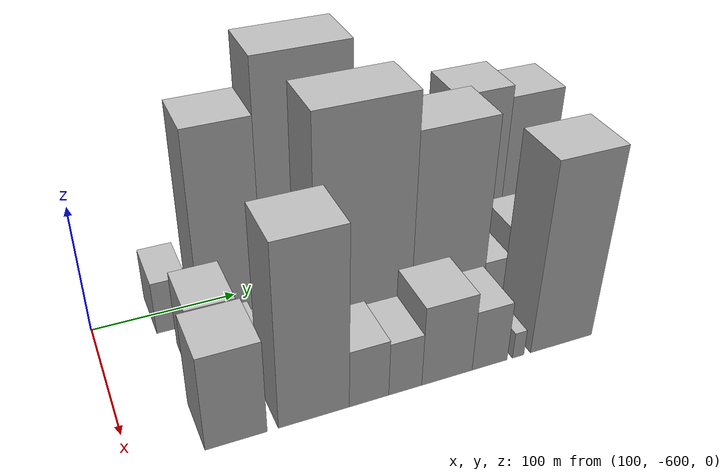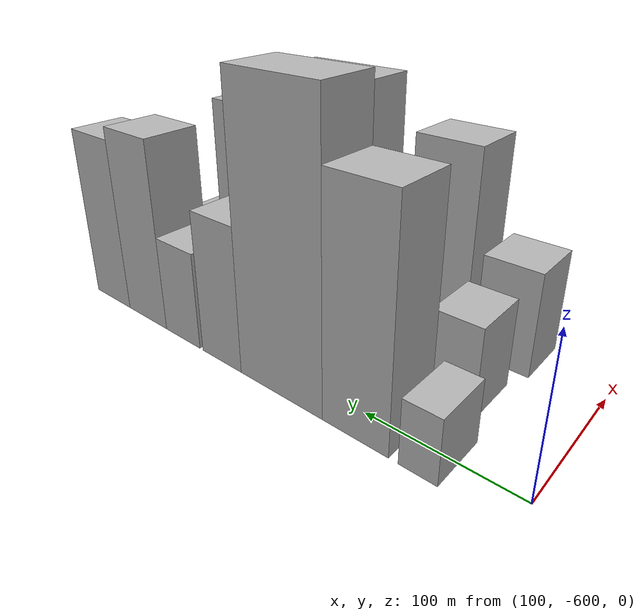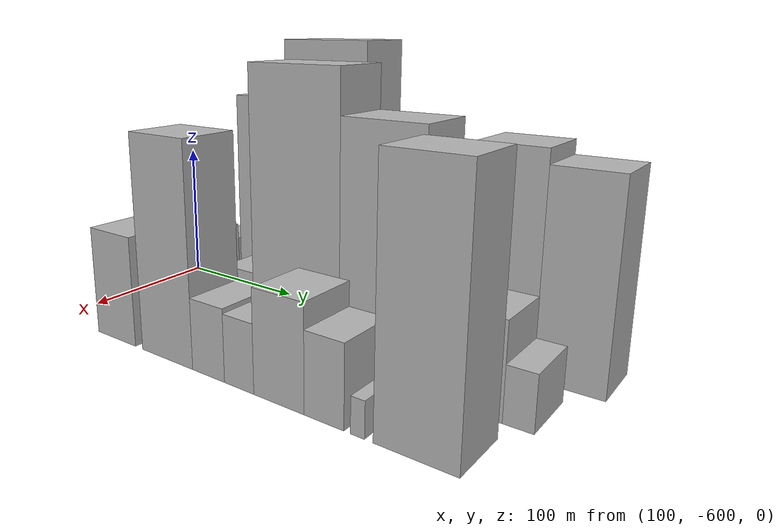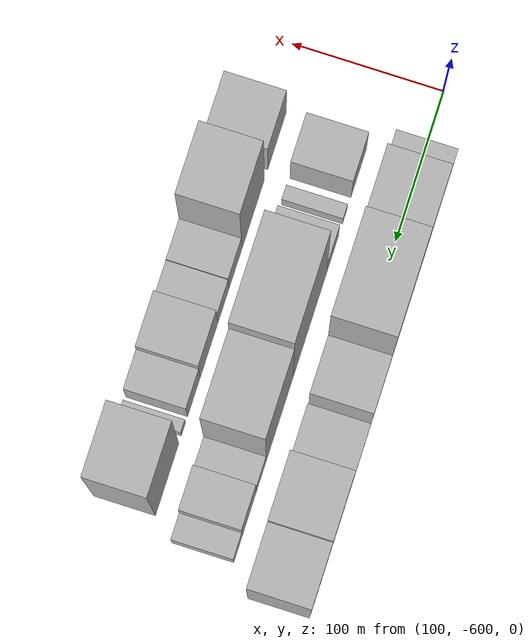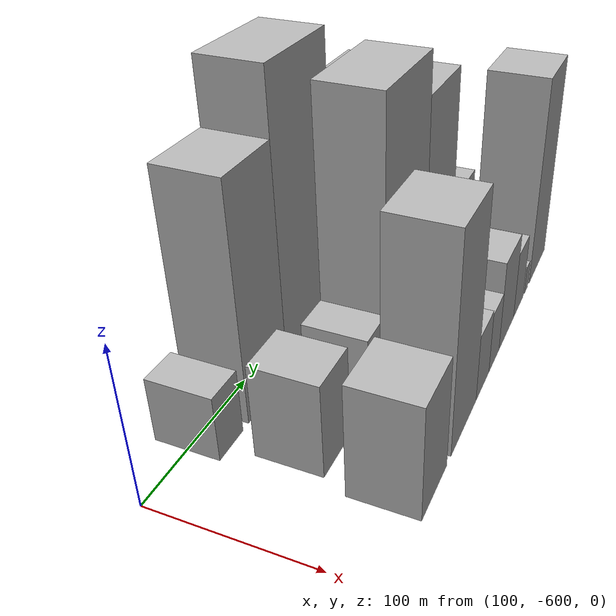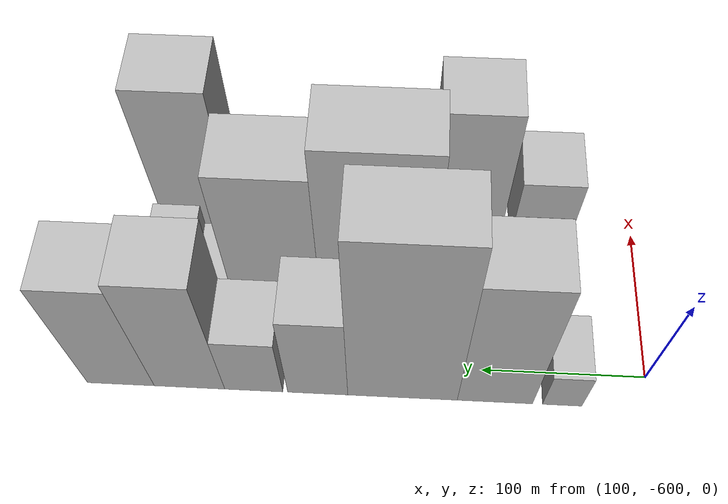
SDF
<sdf version="1.6">
 <world name="default">
  <model name="building_1">
   <static>1</static>
   <pose>100.0000 -548.1899 0 0.000000 0.000000 0.000000</pose>
   <link name="link">
    <pose>0 0 21.00 0 0 0</pose>
    <collision name="collision"><geometry><box><size>40.0000 23.6201 42.0000</size></box></geometry></collision>
    <visual name="visual">
     <cast_shadows>0</cast_shadows>
     <geometry><box><size>40.0000 23.6201 42.0000</size></box></geometry>
     <material>
      <script>
       <uri>model://HANNAS_wall/materials/scripts</uri>
       <uri>model://HANNAS_wall/materials/textures</uri>
       <name>vrc/HANNAS_wall</name>
      </script>
     </material>
    </visual>
   </link>
  </model>
  <model name="building_2">
   <static>1</static>
   <pose>100.0000 -507.7143 0 0.000000 0.000000 0.000000</pose>
   <link name="link">
    <pose>0 0 75.00 0 0 0</pose>
    <collision name="collision"><geometry><box><size>40.0000 45.3312 150.0000</size></box></geometry></collision>
    <visual name="visual">
     <cast_shadows>0</cast_shadows>
     <geometry><box><size>40.0000 45.3312 150.0000</size></box></geometry>
     <material>
      <script>
       <uri>model://HANNAS_wall/materials/scripts</uri>
       <uri>model://HANNAS_wall/materials/textures</uri>
       <name>vrc/HANNAS_wall</name>
      </script>
     </material>
    </visual>
   </link>
  </model>
  <model name="building_3">
   <static>1</static>
   <pose>100.0000 -451.9256 0 0.000000 0.000000 0.000000</pose>
   <link name="link">
    <pose>0 0 94.50 0 0 0</pose>
    <collision name="collision"><geometry><box><size>40.0000 66.2461 189.0000</size></box></geometry></collision>
    <visual name="visual">
     <cast_shadows>0</cast_shadows>
     <geometry><box><size>40.0000 66.2461 189.0000</size></box></geometry>
     <material>
      <script>
       <uri>model://HANNAS_wall/materials/scripts</uri>
       <uri>model://HANNAS_wall/materials/textures</uri>
       <name>vrc/HANNAS_wall</name>
      </script>
     </material>
    </visual>
   </link>
  </model>
  <model name="building_4">
   <static>1</static>
   <pose>100.0000 -400.5581 0 0.000000 0.000000 0.000000</pose>
   <link name="link">
    <pose>0 0 49.50 0 0 0</pose>
    <collision name="collision"><geometry><box><size>40.0000 36.4890 99.0000</size></box></geometry></collision>
    <visual name="visual">
     <cast_shadows>0</cast_shadows>
     <geometry><box><size>40.0000 36.4890 99.0000</size></box></geometry>
     <material>
      <script>
       <uri>model://HANNAS_wall/materials/scripts</uri>
       <uri>model://HANNAS_wall/materials/textures</uri>
       <name>vrc/HANNAS_wall</name>
      </script>
     </material>
    </visual>
   </link>
  </model>
  <model name="building_5">
   <static>1</static>
   <pose>100.0000 -361.6090 0 0.000000 0.000000 0.000000</pose>
   <link name="link">
    <pose>0 0 34.50 0 0 0</pose>
    <collision name="collision"><geometry><box><size>40.0000 35.4092 69.0000</size></box></geometry></collision>
    <visual name="visual">
     <cast_shadows>0</cast_shadows>
     <geometry><box><size>40.0000 35.4092 69.0000</size></box></geometry>
     <material>
      <script>
       <uri>model://HANNAS_wall/materials/scripts</uri>
       <uri>model://HANNAS_wall/materials/textures</uri>
       <name>vrc/HANNAS_wall</name>
      </script>
     </material>
    </visual>
   </link>
  </model>
  <model name="building_6">
   <static>1</static>
   <pose>100.0000 -322.3359 0 0.000000 0.000000 0.000000</pose>
   <link name="link">
    <pose>0 0 67.50 0 0 0</pose>
    <collision name="collision"><geometry><box><size>40.0000 43.1370 135.0000</size></box></geometry></collision>
    <visual name="visual">
     <cast_shadows>0</cast_shadows>
     <geometry><box><size>40.0000 43.1370 135.0000</size></box></geometry>
     <material>
      <script>
       <uri>model://HANNAS_wall/materials/scripts</uri>
       <uri>model://HANNAS_wall/materials/textures</uri>
       <name>vrc/HANNAS_wall</name>
      </script>
     </material>
    </visual>
   </link>
  </model>
  <model name="building_7">
   <static>1</static>
   <pose>100.0000 -280.2449 0 0.000000 0.000000 0.000000</pose>
   <link name="link">
    <pose>0 0 63.00 0 0 0</pose>
    <collision name="collision"><geometry><box><size>40.0000 41.0449 126.0000</size></box></geometry></collision>
    <visual name="visual">
     <cast_shadows>0</cast_shadows>
     <geometry><box><size>40.0000 41.0449 126.0000</size></box></geometry>
     <material>
      <script>
       <uri>model://HANNAS_wall/materials/scripts</uri>
       <uri>model://HANNAS_wall/materials/textures</uri>
       <name>vrc/HANNAS_wall</name>
      </script>
     </material>
    </visual>
   </link>
  </model>
  <model name="building_34">
   <static>1</static>
   <pose>155.0000 -533.9332 0 0.000000 0.000000 0.000000</pose>
   <link name="link">
    <pose>0 0 30.00 0 0 0</pose>
    <collision name="collision"><geometry><box><size>40.0000 32.1335 60.0000</size></box></geometry></collision>
    <visual name="visual">
     <cast_shadows>0</cast_shadows>
     <geometry><box><size>40.0000 32.1335 60.0000</size></box></geometry>
     <material>
      <script>
       <uri>model://HANNAS_wall/materials/scripts</uri>
       <uri>model://HANNAS_wall/materials/textures</uri>
       <name>vrc/HANNAS_wall</name>
      </script>
     </material>
    </visual>
   </link>
  </model>
  <model name="building_35">
   <static>1</static>
   <pose>155.0000 -505.0855 0 0.000000 0.000000 0.000000</pose>
   <link name="link">
    <pose>0 0 10.50 0 0 0</pose>
    <collision name="collision"><geometry><box><size>40.0000 9.5620 21.0000</size></box></geometry></collision>
    <visual name="visual">
     <cast_shadows>0</cast_shadows>
     <geometry><box><size>40.0000 9.5620 21.0000</size></box></geometry>
     <material>
      <script>
       <uri>model://HANNAS_wall/materials/scripts</uri>
       <uri>model://HANNAS_wall/materials/textures</uri>
       <name>vrc/HANNAS_wall</name>
      </script>
     </material>
    </visual>
   </link>
  </model>
  <model name="building_36">
   <static>1</static>
   <pose>155.0000 -479.7461 0 0.000000 0.000000 0.000000</pose>
   <link name="link">
    <pose>0 0 22.50 0 0 0</pose>
    <collision name="collision"><geometry><box><size>40.0000 25.1167 45.0000</size></box></geometry></collision>
    <visual name="visual">
     <cast_shadows>0</cast_shadows>
     <geometry><box><size>40.0000 25.1167 45.0000</size></box></geometry>
     <material>
      <script>
       <uri>model://HANNAS_wall/materials/scripts</uri>
       <uri>model://HANNAS_wall/materials/textures</uri>
       <name>vrc/HANNAS_wall</name>
      </script>
     </material>
    </visual>
   </link>
  </model>
  <model name="building_37">
   <static>1</static>
   <pose>155.0000 -433.0022 0 0.000000 0.000000 0.000000</pose>
   <link name="link">
    <pose>0 0 88.50 0 0 0</pose>
    <collision name="collision"><geometry><box><size>40.0000 68.3711 177.0000</size></box></geometry></collision>
    <visual name="visual">
     <cast_shadows>0</cast_shadows>
     <geometry><box><size>40.0000 68.3711 177.0000</size></box></geometry>
     <material>
      <script>
       <uri>model://HANNAS_wall/materials/scripts</uri>
       <uri>model://HANNAS_wall/materials/textures</uri>
       <name>vrc/HANNAS_wall</name>
      </script>
     </material>
    </visual>
   </link>
  </model>
  <model name="building_38">
   <static>1</static>
   <pose>155.0000 -371.3407 0 0.000000 0.000000 0.000000</pose>
   <link name="link">
    <pose>0 0 75.00 0 0 0</pose>
    <collision name="collision"><geometry><box><size>40.0000 54.9519 150.0000</size></box></geometry></collision>
    <visual name="visual">
     <cast_shadows>0</cast_shadows>
     <geometry><box><size>40.0000 54.9519 150.0000</size></box></geometry>
     <material>
      <script>
       <uri>model://HANNAS_wall/materials/scripts</uri>
       <uri>model://HANNAS_wall/materials/textures</uri>
       <name>vrc/HANNAS_wall</name>
      </script>
     </material>
    </visual>
   </link>
  </model>
  <model name="building_39">
   <static>1</static>
   <pose>155.0000 -333.9074 0 0.000000 0.000000 0.000000</pose>
   <link name="link">
    <pose>0 0 18.00 0 0 0</pose>
    <collision name="collision"><geometry><box><size>40.0000 19.9147 36.0000</size></box></geometry></collision>
    <visual name="visual">
     <cast_shadows>0</cast_shadows>
     <geometry><box><size>40.0000 19.9147 36.0000</size></box></geometry>
     <material>
      <script>
       <uri>model://HANNAS_wall/materials/scripts</uri>
       <uri>model://HANNAS_wall/materials/textures</uri>
       <name>vrc/HANNAS_wall</name>
      </script>
     </material>
    </visual>
   </link>
  </model>
  <model name="building_40">
   <static>1</static>
   <pose>155.0000 -309.5856 0 0.000000 0.000000 0.000000</pose>
   <link name="link">
    <pose>0 0 28.50 0 0 0</pose>
    <collision name="collision"><geometry><box><size>40.0000 28.7289 57.0000</size></box></geometry></collision>
    <visual name="visual">
     <cast_shadows>0</cast_shadows>
     <geometry><box><size>40.0000 28.7289 57.0000</size></box></geometry>
     <material>
      <script>
       <uri>model://HANNAS_wall/materials/scripts</uri>
       <uri>model://HANNAS_wall/materials/textures</uri>
       <name>vrc/HANNAS_wall</name>
      </script>
     </material>
    </visual>
   </link>
  </model>
  <model name="building_41">
   <static>1</static>
   <pose>155.0000 -286.6634 0 0.000000 0.000000 0.000000</pose>
   <link name="link">
    <pose>0 0 16.50 0 0 0</pose>
    <collision name="collision"><geometry><box><size>40.0000 17.1156 33.0000</size></box></geometry></collision>
    <visual name="visual">
     <cast_shadows>0</cast_shadows>
     <geometry><box><size>40.0000 17.1156 33.0000</size></box></geometry>
     <material>
      <script>
       <uri>model://HANNAS_wall/materials/scripts</uri>
       <uri>model://HANNAS_wall/materials/textures</uri>
       <name>vrc/HANNAS_wall</name>
      </script>
     </material>
    </visual>
   </link>
  </model>
  <model name="building_62">
   <static>1</static>
   <pose>210.0000 -537.9240 0 0.000000 0.000000 0.000000</pose>
   <link name="link">
    <pose>0 0 36.00 0 0 0</pose>
    <collision name="collision"><geometry><box><size>40.0000 38.1519 72.0000</size></box></geometry></collision>
    <visual name="visual">
     <cast_shadows>0</cast_shadows>
     <geometry><box><size>40.0000 38.1519 72.0000</size></box></geometry>
     <material>
      <script>
       <uri>model://HANNAS_wall/materials/scripts</uri>
       <uri>model://HANNAS_wall/materials/textures</uri>
       <name>vrc/HANNAS_wall</name>
      </script>
     </material>
    </visual>
   </link>
  </model>
  <model name="building_63">
   <static>1</static>
   <pose>210.0000 -488.9559 0 0.000000 0.000000 0.000000</pose>
   <link name="link">
    <pose>0 0 69.00 0 0 0</pose>
    <collision name="collision"><geometry><box><size>40.0000 45.7842 138.0000</size></box></geometry></collision>
    <visual name="visual">
     <cast_shadows>0</cast_shadows>
     <geometry><box><size>40.0000 45.7842 138.0000</size></box></geometry>
     <material>
      <script>
       <uri>model://HANNAS_wall/materials/scripts</uri>
       <uri>model://HANNAS_wall/materials/textures</uri>
       <name>vrc/HANNAS_wall</name>
      </script>
     </material>
    </visual>
   </link>
  </model>
  <model name="building_64">
   <static>1</static>
   <pose>210.0000 -452.8331 0 0.000000 0.000000 0.000000</pose>
   <link name="link">
    <pose>0 0 22.50 0 0 0</pose>
    <collision name="collision"><geometry><box><size>40.0000 26.4615 45.0000</size></box></geometry></collision>
    <visual name="visual">
     <cast_shadows>0</cast_shadows>
     <geometry><box><size>40.0000 26.4615 45.0000</size></box></geometry>
     <material>
      <script>
       <uri>model://HANNAS_wall/materials/scripts</uri>
       <uri>model://HANNAS_wall/materials/textures</uri>
       <name>vrc/HANNAS_wall</name>
      </script>
     </material>
    </visual>
   </link>
  </model>
  <model name="building_65">
   <static>1</static>
   <pose>210.0000 -428.2749 0 0.000000 0.000000 0.000000</pose>
   <link name="link">
    <pose>0 0 21.00 0 0 0</pose>
    <collision name="collision"><geometry><box><size>40.0000 22.6547 42.0000</size></box></geometry></collision>
    <visual name="visual">
     <cast_shadows>0</cast_shadows>
     <geometry><box><size>40.0000 22.6547 42.0000</size></box></geometry>
     <material>
      <script>
       <uri>model://HANNAS_wall/materials/scripts</uri>
       <uri>model://HANNAS_wall/materials/textures</uri>
       <name>vrc/HANNAS_wall</name>
      </script>
     </material>
    </visual>
   </link>
  </model>
  <model name="building_66">
   <static>1</static>
   <pose>210.0000 -399.0613 0 0.000000 0.000000 0.000000</pose>
   <link name="link">
    <pose>0 0 31.50 0 0 0</pose>
    <collision name="collision"><geometry><box><size>40.0000 35.7724 63.0000</size></box></geometry></collision>
    <visual name="visual">
     <cast_shadows>0</cast_shadows>
     <geometry><box><size>40.0000 35.7724 63.0000</size></box></geometry>
     <material>
      <script>
       <uri>model://HANNAS_wall/materials/scripts</uri>
       <uri>model://HANNAS_wall/materials/textures</uri>
       <name>vrc/HANNAS_wall</name>
      </script>
     </material>
    </visual>
   </link>
  </model>
  <model name="building_67">
   <static>1</static>
   <pose>210.0000 -368.3655 0 0.000000 0.000000 0.000000</pose>
   <link name="link">
    <pose>0 0 24.00 0 0 0</pose>
    <collision name="collision"><geometry><box><size>40.0000 25.6192 48.0000</size></box></geometry></collision>
    <visual name="visual">
     <cast_shadows>0</cast_shadows>
     <geometry><box><size>40.0000 25.6192 48.0000</size></box></geometry>
     <material>
      <script>
       <uri>model://HANNAS_wall/materials/scripts</uri>
       <uri>model://HANNAS_wall/materials/textures</uri>
       <name>vrc/HANNAS_wall</name>
      </script>
     </material>
    </visual>
   </link>
  </model>
  <model name="building_68">
   <static>1</static>
   <pose>210.0000 -347.2727 0 0.000000 0.000000 0.000000</pose>
   <link name="link">
    <pose>0 0 10.50 0 0 0</pose>
    <collision name="collision"><geometry><box><size>40.0000 8.5665 21.0000</size></box></geometry></collision>
    <visual name="visual">
     <cast_shadows>0</cast_shadows>
     <geometry><box><size>40.0000 8.5665 21.0000</size></box></geometry>
     <material>
      <script>
       <uri>model://HANNAS_wall/materials/scripts</uri>
       <uri>model://HANNAS_wall/materials/textures</uri>
       <name>vrc/HANNAS_wall</name>
      </script>
     </material>
    </visual>
   </link>
  </model>
  <model name="building_69">
   <static>1</static>
   <pose>210.0000 -314.4757 0 0.000000 0.000000 0.000000</pose>
   <link name="link">
    <pose>0 0 73.50 0 0 0</pose>
    <collision name="collision"><geometry><box><size>40.0000 47.0275 147.0000</size></box></geometry></collision>
    <visual name="visual">
     <cast_shadows>0</cast_shadows>
     <geometry><box><size>40.0000 47.0275 147.0000</size></box></geometry>
     <material>
      <script>
       <uri>model://HANNAS_wall/materials/scripts</uri>
       <uri>model://HANNAS_wall/materials/textures</uri>
       <name>vrc/HANNAS_wall</name>
      </script>
     </material>
    </visual>
   </link>
  </model>
 </world>
</sdf>
